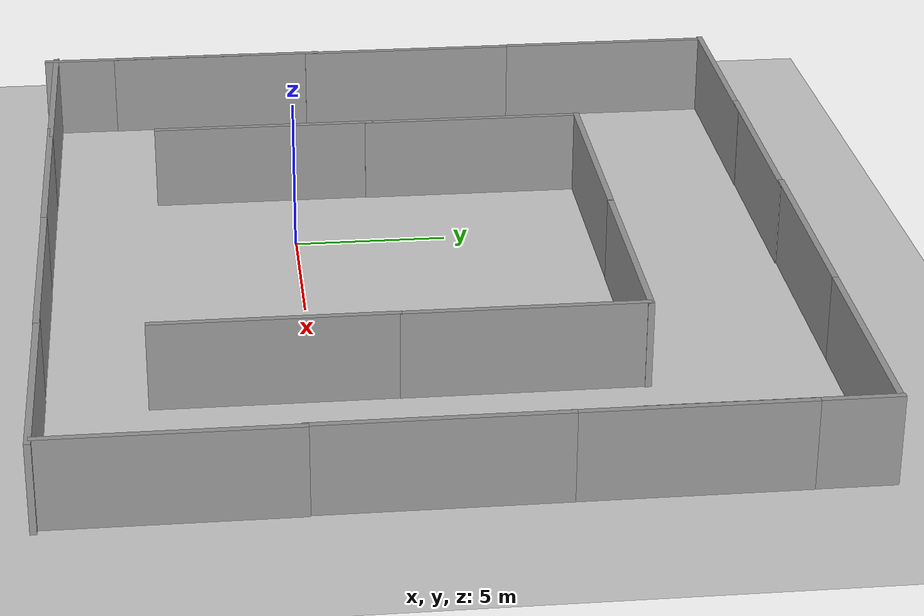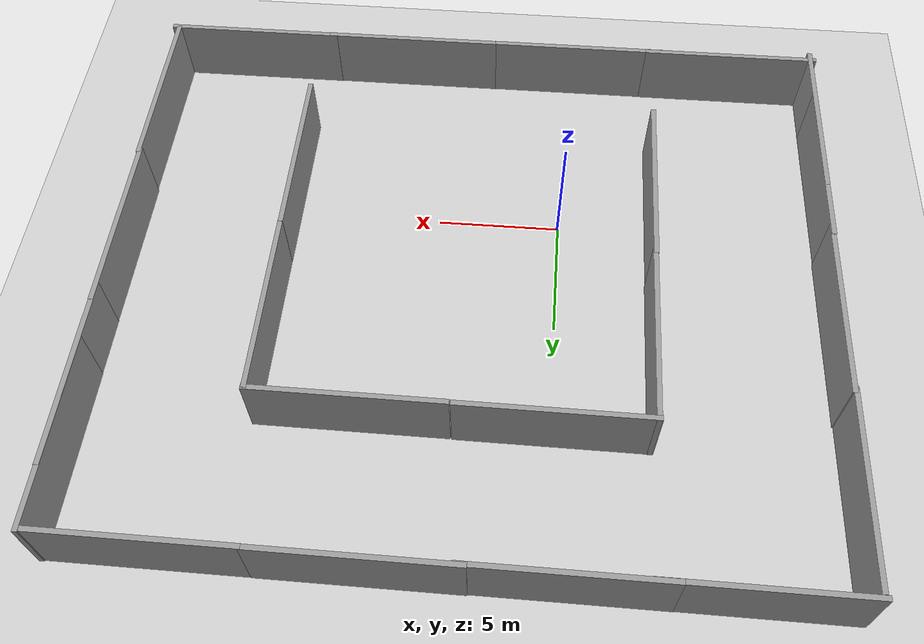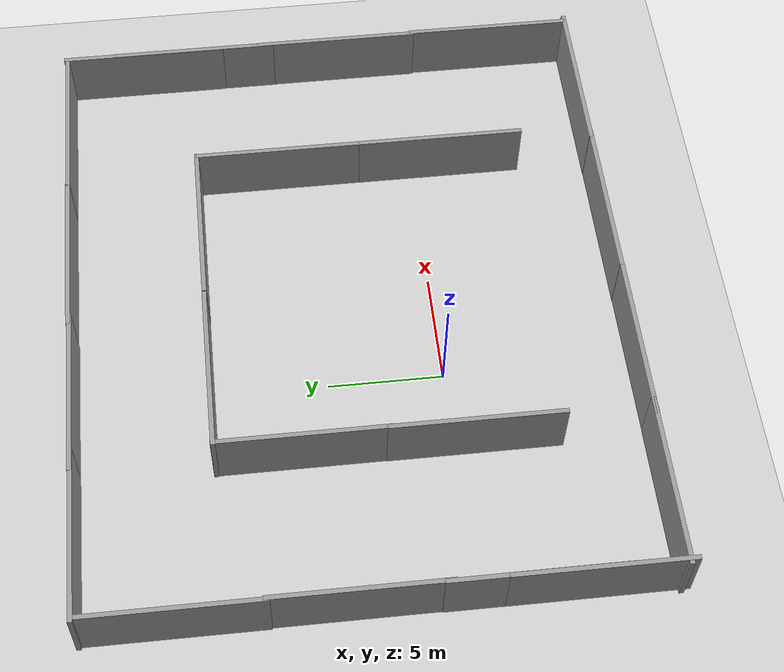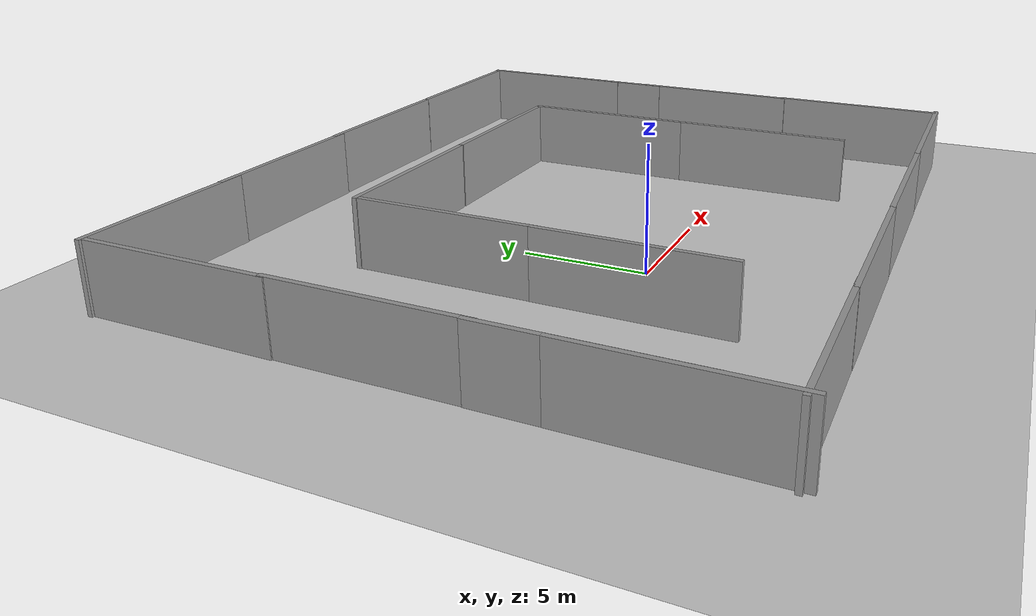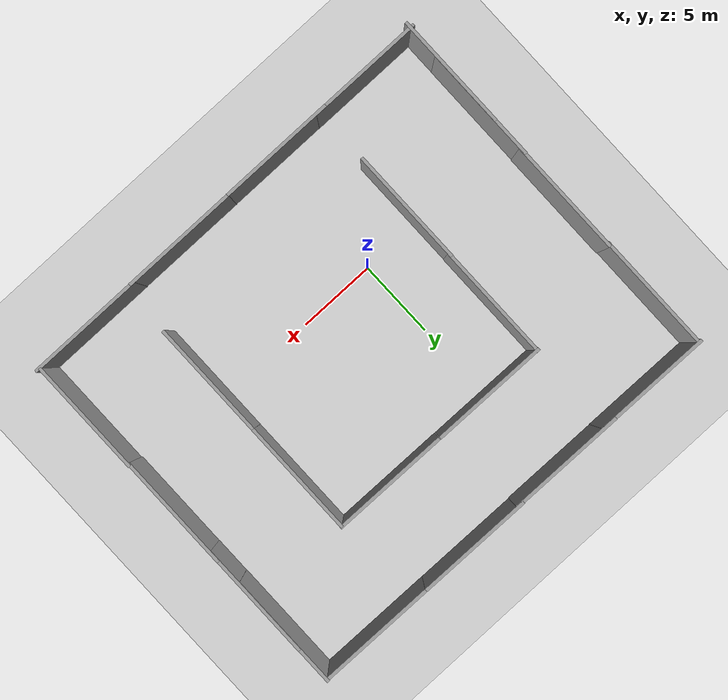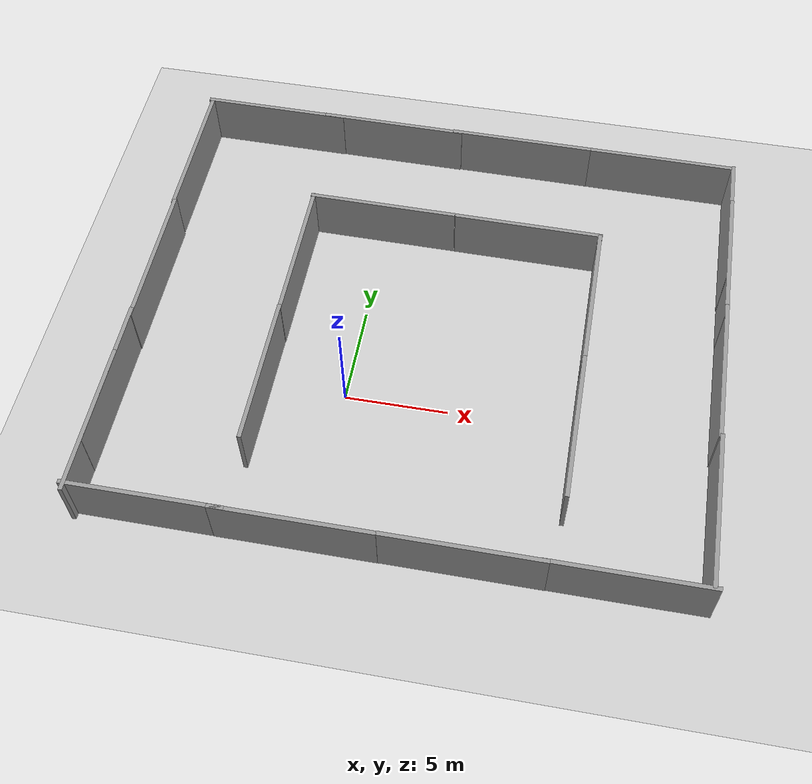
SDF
<sdf version="1.7">
 <world name="default">
  <light name="sun" type="directional">
   <pose>0 0 10 0 -0 0</pose>
   <diffuse>0.8 0.8 0.8 1</diffuse>
   <specular>0.2 0.2 0.2 1</specular>
   <attenuation>
    <range>1000</range>
    <constant>0.9</constant>
    <linear>0.01</linear>
    <quadratic>0.001</quadratic>
   </attenuation>
   <direction>-0.5 0.1 -0.9</direction>
   <spot><inner_angle>0</inner_angle><outer_angle>0</outer_angle><falloff>0</falloff></spot>
  </light>
  <model name="ground_plane">
   <static>1</static>
   <link name="link">
    <collision name="collision">
     <geometry><plane><normal>0 0 1</normal><size>100 100</size></plane></geometry>
     <surface>
      <contact><collide_bitmask>65535</collide_bitmask></contact>
      <friction><ode><mu>100</mu><mu2>50</mu2></ode></friction>
     </surface>
    </collision>
    <visual name="visual">
     <cast_shadows>0</cast_shadows>
     <geometry><plane><normal>0 0 1</normal><size>100 100</size></plane></geometry>
     <material>
      <script><uri>file://media/materials/scripts/gazebo.material</uri><name>Gazebo/Grey</name></script>
     </material>
    </visual>
   </link>
  </model>
  <gravity>0 0 -9.8</gravity>
  <magnetic_field>6e-06 2.3e-05 -4.2e-05</magnetic_field>
  <atmosphere type="adiabatic"/>
  <physics type="ode">
   <max_step_size>0.001</max_step_size>
   <real_time_factor>1</real_time_factor>
   <real_time_update_rate>1000</real_time_update_rate>
  </physics>
  <scene><ambient>0.4 0.4 0.4 1</ambient><background>0.7 0.7 0.7 1</background><shadows>1</shadows></scene>
  <spherical_coordinates>
   <surface_model>EARTH_WGS84</surface_model>
   <latitude_deg>0</latitude_deg>
   <longitude_deg>0</longitude_deg>
   <elevation>0</elevation>
   <heading_deg>0</heading_deg>
  </spherical_coordinates>
  <model name="grey_wall">
   <static>1</static>
   <link name="link">
    <pose>0 0 1.4 0 -0 0</pose>
    <collision name="collision"><geometry><box><size>7.5 0.2 2.8</size></box></geometry></collision>
    <visual name="visual">
     <cast_shadows>0</cast_shadows>
     <geometry><box><size>7.5 0.2 2.8</size></box></geometry>
     <material>
      <script>
       <uri>model://grey_wall/materials/scripts</uri>
       <uri>model://grey_wall/materials/textures</uri>
       <name>vrc/grey_wall</name>
      </script>
     </material>
    </visual>
   </link>
   <pose>-3.74584 -0.842955 0.004849 0.001196 -0.000603 1.57051</pose>
  </model>
  <model name="grey_wall_clone">
   <static>1</static>
   <link name="link">
    <pose>0 0 1.4 0 -0 0</pose>
    <collision name="collision"><geometry><box><size>7.5 0.2 2.8</size></box></geometry></collision>
    <visual name="visual">
     <cast_shadows>0</cast_shadows>
     <geometry><box><size>7.5 0.2 2.8</size></box></geometry>
     <material>
      <script>
       <uri>model://grey_wall/materials/scripts</uri>
       <uri>model://grey_wall/materials/textures</uri>
       <name>vrc/grey_wall</name>
      </script>
     </material>
    </visual>
   </link>
   <pose>-3.72426 6.39477 0.004849 0.001196 -0.000603 1.57051</pose>
  </model>
  <model name="grey_wall_clone_0">
   <static>1</static>
   <link name="link">
    <pose>0 0 1.4 0 -0 0</pose>
    <collision name="collision"><geometry><box><size>7.5 0.2 2.8</size></box></geometry></collision>
    <visual name="visual">
     <cast_shadows>0</cast_shadows>
     <geometry><box><size>7.5 0.2 2.8</size></box></geometry>
     <material>
      <script>
       <uri>model://grey_wall/materials/scripts</uri>
       <uri>model://grey_wall/materials/textures</uri>
       <name>vrc/grey_wall</name>
      </script>
     </material>
    </visual>
   </link>
   <pose>-0.103759 10.0096 0.004849 -0.000595 -0.0012 3.13466</pose>
  </model>
  <model name="grey_wall_clone_0_clone">
   <static>1</static>
   <link name="link">
    <pose>0 0 1.4 0 -0 0</pose>
    <collision name="collision"><geometry><box><size>7.5 0.2 2.8</size></box></geometry></collision>
    <visual name="visual">
     <cast_shadows>0</cast_shadows>
     <geometry><box><size>7.5 0.2 2.8</size></box></geometry>
     <material>
      <script>
       <uri>model://grey_wall/materials/scripts</uri>
       <uri>model://grey_wall/materials/textures</uri>
       <name>vrc/grey_wall</name>
      </script>
     </material>
    </visual>
   </link>
   <pose>7.43047 9.9449 0.004849 -0.000595 -0.0012 3.13466</pose>
  </model>
  <model name="grey_wall_clone_1">
   <static>1</static>
   <link name="link">
    <pose>0 0 1.4 0 -0 0</pose>
    <collision name="collision"><geometry><box><size>7.5 0.2 2.8</size></box></geometry></collision>
    <visual name="visual">
     <cast_shadows>0</cast_shadows>
     <geometry><box><size>7.5 0.2 2.8</size></box></geometry>
     <material>
      <script>
       <uri>model://grey_wall/materials/scripts</uri>
       <uri>model://grey_wall/materials/textures</uri>
       <name>vrc/grey_wall</name>
      </script>
     </material>
    </visual>
   </link>
   <pose>11.0585 6.20914 0.004849 0.001196 -0.000603 1.57051</pose>
  </model>
  <model name="grey_wall_clone_2">
   <static>1</static>
   <link name="link">
    <pose>0 0 1.4 0 -0 0</pose>
    <collision name="collision"><geometry><box><size>7.5 0.2 2.8</size></box></geometry></collision>
    <visual name="visual">
     <cast_shadows>0</cast_shadows>
     <geometry><box><size>7.5 0.2 2.8</size></box></geometry>
     <material>
      <script>
       <uri>model://grey_wall/materials/scripts</uri>
       <uri>model://grey_wall/materials/textures</uri>
       <name>vrc/grey_wall</name>
      </script>
     </material>
    </visual>
   </link>
   <pose>11.0501 -1.22995 0.004849 0.001196 -0.000603 1.57051</pose>
  </model>
  <model name="grey_wall_0">
   <static>1</static>
   <link name="link">
    <pose>0 0 1.4 0 -0 0</pose>
    <collision name="collision"><geometry><box><size>7.5 0.2 2.8</size></box></geometry></collision>
    <visual name="visual">
     <cast_shadows>0</cast_shadows>
     <geometry><box><size>7.5 0.2 2.8</size></box></geometry>
     <material>
      <script>
       <uri>model://grey_wall/materials/scripts</uri>
       <uri>model://grey_wall/materials/textures</uri>
       <name>vrc/grey_wall</name>
      </script>
     </material>
    </visual>
   </link>
   <pose>-0.50691 -8.14163 0 0 -0 0</pose>
  </model>
  <model name="grey_wall_0_clone">
   <static>1</static>
   <link name="link">
    <pose>0 0 1.4 0 -0 0</pose>
    <collision name="collision"><geometry><box><size>7.5 0.2 2.8</size></box></geometry></collision>
    <visual name="visual">
     <cast_shadows>0</cast_shadows>
     <geometry><box><size>7.5 0.2 2.8</size></box></geometry>
     <material>
      <script>
       <uri>model://grey_wall/materials/scripts</uri>
       <uri>model://grey_wall/materials/textures</uri>
       <name>vrc/grey_wall</name>
      </script>
     </material>
    </visual>
   </link>
   <pose>6.93875 -8.12964 0 0 -0 0</pose>
  </model>
  <model name="grey_wall_0_clone_0">
   <static>1</static>
   <link name="link">
    <pose>0 0 1.4 0 -0 0</pose>
    <collision name="collision"><geometry><box><size>7.5 0.2 2.8</size></box></geometry></collision>
    <visual name="visual">
     <cast_shadows>0</cast_shadows>
     <geometry><box><size>7.5 0.2 2.8</size></box></geometry>
     <material>
      <script>
       <uri>model://grey_wall/materials/scripts</uri>
       <uri>model://grey_wall/materials/textures</uri>
       <name>vrc/grey_wall</name>
      </script>
     </material>
    </visual>
   </link>
   <pose>14.111 -8.11639 0 0 -0 0</pose>
  </model>
  <model name="grey_wall_clone_2_clone">
   <static>1</static>
   <link name="link">
    <pose>0 0 1.4 0 -0 0</pose>
    <collision name="collision"><geometry><box><size>7.5 0.2 2.8</size></box></geometry></collision>
    <visual name="visual">
     <cast_shadows>0</cast_shadows>
     <geometry><box><size>7.5 0.2 2.8</size></box></geometry>
     <material>
      <script>
       <uri>model://grey_wall/materials/scripts</uri>
       <uri>model://grey_wall/materials/textures</uri>
       <name>vrc/grey_wall</name>
      </script>
     </material>
    </visual>
   </link>
   <pose>17.5604 -4.36205 0.004849 0.001196 -0.000603 1.57051</pose>
  </model>
  <model name="grey_wall_clone_2_clone_0">
   <static>1</static>
   <link name="link">
    <pose>0 0 1.4 0 -0 0</pose>
    <collision name="collision"><geometry><box><size>7.5 0.2 2.8</size></box></geometry></collision>
    <visual name="visual">
     <cast_shadows>0</cast_shadows>
     <geometry><box><size>7.5 0.2 2.8</size></box></geometry>
     <material>
      <script>
       <uri>model://grey_wall/materials/scripts</uri>
       <uri>model://grey_wall/materials/textures</uri>
       <name>vrc/grey_wall</name>
      </script>
     </material>
    </visual>
   </link>
   <pose>17.5087 2.95098 0.004849 0.001196 -0.000603 1.57051</pose>
  </model>
  <model name="grey_wall_clone_2_clone_1">
   <static>1</static>
   <link name="link">
    <pose>0 0 1.4 0 -0 0</pose>
    <collision name="collision"><geometry><box><size>7.5 0.2 2.8</size></box></geometry></collision>
    <visual name="visual">
     <cast_shadows>0</cast_shadows>
     <geometry><box><size>7.5 0.2 2.8</size></box></geometry>
     <material>
      <script>
       <uri>model://grey_wall/materials/scripts</uri>
       <uri>model://grey_wall/materials/textures</uri>
       <name>vrc/grey_wall</name>
      </script>
     </material>
    </visual>
   </link>
   <pose>17.4994 9.68722 0.004849 0.001196 -0.000603 1.57051</pose>
  </model>
  <model name="grey_wall_clone_2_clone_2">
   <static>1</static>
   <link name="link">
    <pose>0 0 1.4 0 -0 0</pose>
    <collision name="collision"><geometry><box><size>7.5 0.2 2.8</size></box></geometry></collision>
    <visual name="visual">
     <cast_shadows>0</cast_shadows>
     <geometry><box><size>7.5 0.2 2.8</size></box></geometry>
     <material>
      <script>
       <uri>model://grey_wall/materials/scripts</uri>
       <uri>model://grey_wall/materials/textures</uri>
       <name>vrc/grey_wall</name>
      </script>
     </material>
    </visual>
   </link>
   <pose>17.484 12.0777 0.004849 0.001196 -0.000603 1.57051</pose>
  </model>
  <model name="grey_wall_clone_0_clone_clone">
   <static>1</static>
   <link name="link">
    <pose>0 0 1.4 0 -0 0</pose>
    <collision name="collision"><geometry><box><size>7.5 0.2 2.8</size></box></geometry></collision>
    <visual name="visual">
     <cast_shadows>0</cast_shadows>
     <geometry><box><size>7.5 0.2 2.8</size></box></geometry>
     <material>
      <script>
       <uri>model://grey_wall/materials/scripts</uri>
       <uri>model://grey_wall/materials/textures</uri>
       <name>vrc/grey_wall</name>
      </script>
     </material>
    </visual>
   </link>
   <pose>13.7486 15.7187 0.004849 -0.000595 -0.0012 3.13466</pose>
  </model>
  <model name="grey_wall_clone_0_clone_clone_0">
   <static>1</static>
   <link name="link">
    <pose>0 0 1.4 0 -0 0</pose>
    <collision name="collision"><geometry><box><size>7.5 0.2 2.8</size></box></geometry></collision>
    <visual name="visual">
     <cast_shadows>0</cast_shadows>
     <geometry><box><size>7.5 0.2 2.8</size></box></geometry>
     <material>
      <script>
       <uri>model://grey_wall/materials/scripts</uri>
       <uri>model://grey_wall/materials/textures</uri>
       <name>vrc/grey_wall</name>
      </script>
     </material>
    </visual>
   </link>
   <pose>6.34457 15.7773 0.004849 -0.000595 -0.0012 3.13466</pose>
  </model>
  <model name="grey_wall_clone_0_clone_clone_1">
   <static>1</static>
   <link name="link">
    <pose>0 0 1.4 0 -0 0</pose>
    <collision name="collision"><geometry><box><size>7.5 0.2 2.8</size></box></geometry></collision>
    <visual name="visual">
     <cast_shadows>0</cast_shadows>
     <geometry><box><size>7.5 0.2 2.8</size></box></geometry>
     <material>
      <script>
       <uri>model://grey_wall/materials/scripts</uri>
       <uri>model://grey_wall/materials/textures</uri>
       <name>vrc/grey_wall</name>
      </script>
     </material>
    </visual>
   </link>
   <pose>-0.664228 15.7926 0.004849 -0.000595 -0.0012 3.13466</pose>
  </model>
  <model name="grey_wall_clone_0_clone_clone_2">
   <static>1</static>
   <link name="link">
    <pose>0 0 1.4 0 -0 0</pose>
    <collision name="collision"><geometry><box><size>7.5 0.2 2.8</size></box></geometry></collision>
    <visual name="visual">
     <cast_shadows>0</cast_shadows>
     <geometry><box><size>7.5 0.2 2.8</size></box></geometry>
     <material>
      <script>
       <uri>model://grey_wall/materials/scripts</uri>
       <uri>model://grey_wall/materials/textures</uri>
       <name>vrc/grey_wall</name>
      </script>
     </material>
    </visual>
   </link>
   <pose>-7.15813 15.8254 0.004849 -0.000595 -0.0012 3.13466</pose>
  </model>
  <model name="grey_wall_clone_clone">
   <static>1</static>
   <link name="link">
    <pose>0 0 1.4 0 -0 0</pose>
    <collision name="collision"><geometry><box><size>7.5 0.2 2.8</size></box></geometry></collision>
    <visual name="visual">
     <cast_shadows>0</cast_shadows>
     <geometry><box><size>7.5 0.2 2.8</size></box></geometry>
     <material>
      <script>
       <uri>model://grey_wall/materials/scripts</uri>
       <uri>model://grey_wall/materials/textures</uri>
       <name>vrc/grey_wall</name>
      </script>
     </material>
    </visual>
   </link>
   <pose>-10.7178 11.9927 0.004849 0.001196 -0.000603 1.57051</pose>
  </model>
  <model name="grey_wall_clone_clone_0">
   <static>1</static>
   <link name="link">
    <pose>0 0 1.4 0 -0 0</pose>
    <collision name="collision"><geometry><box><size>7.5 0.2 2.8</size></box></geometry></collision>
    <visual name="visual">
     <cast_shadows>0</cast_shadows>
     <geometry><box><size>7.5 0.2 2.8</size></box></geometry>
     <material>
      <script>
       <uri>model://grey_wall/materials/scripts</uri>
       <uri>model://grey_wall/materials/textures</uri>
       <name>vrc/grey_wall</name>
      </script>
     </material>
    </visual>
   </link>
   <pose>-10.6725 4.75751 0.004849 0.001196 -0.000603 1.57051</pose>
  </model>
  <model name="grey_wall_clone_clone_1">
   <static>1</static>
   <link name="link">
    <pose>0 0 1.4 0 -0 0</pose>
    <collision name="collision"><geometry><box><size>7.5 0.2 2.8</size></box></geometry></collision>
    <visual name="visual">
     <cast_shadows>0</cast_shadows>
     <geometry><box><size>7.5 0.2 2.8</size></box></geometry>
     <material>
      <script>
       <uri>model://grey_wall/materials/scripts</uri>
       <uri>model://grey_wall/materials/textures</uri>
       <name>vrc/grey_wall</name>
      </script>
     </material>
    </visual>
   </link>
   <pose>-10.7058 -2.2651 0.004849 0.001196 -0.000603 1.57051</pose>
  </model>
  <model name="grey_wall_clone_clone_2">
   <static>1</static>
   <link name="link">
    <pose>0 0 1.4 0 -0 0</pose>
    <collision name="collision"><geometry><box><size>7.5 0.2 2.8</size></box></geometry></collision>
    <visual name="visual">
     <cast_shadows>0</cast_shadows>
     <geometry><box><size>7.5 0.2 2.8</size></box></geometry>
     <material>
      <script>
       <uri>model://grey_wall/materials/scripts</uri>
       <uri>model://grey_wall/materials/textures</uri>
       <name>vrc/grey_wall</name>
      </script>
     </material>
    </visual>
   </link>
   <pose>-10.7141 -4.7804 0.004849 0.001196 -0.000603 1.57051</pose>
  </model>
  <model name="grey_wall_0_clone_1">
   <static>1</static>
   <link name="link">
    <pose>0 0 1.4 0 -0 0</pose>
    <collision name="collision"><geometry><box><size>7.5 0.2 2.8</size></box></geometry></collision>
    <visual name="visual">
     <cast_shadows>0</cast_shadows>
     <geometry><box><size>7.5 0.2 2.8</size></box></geometry>
     <material>
      <script>
       <uri>model://grey_wall/materials/scripts</uri>
       <uri>model://grey_wall/materials/textures</uri>
       <name>vrc/grey_wall</name>
      </script>
     </material>
    </visual>
   </link>
   <pose>-7.21755 -8.13219 0 0 -0 0</pose>
  </model>
 </world>
</sdf>
